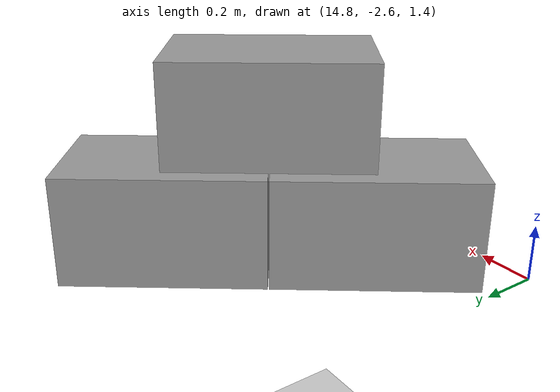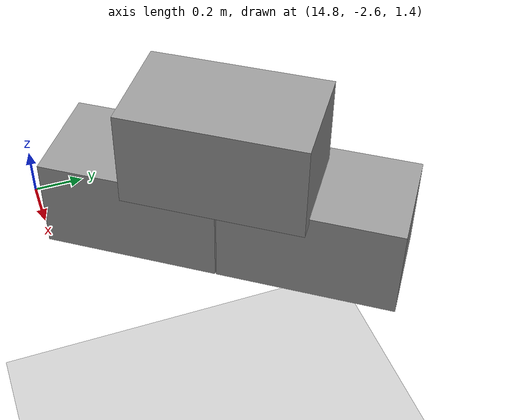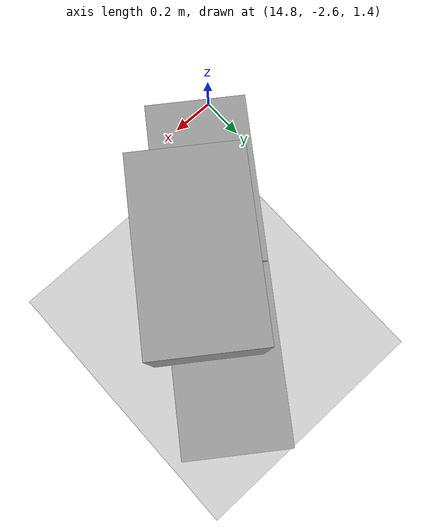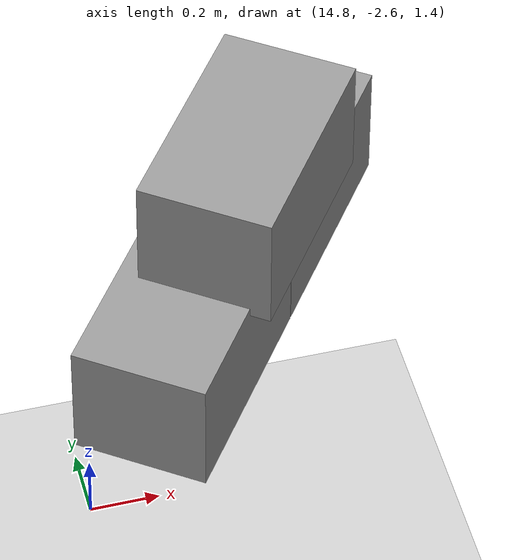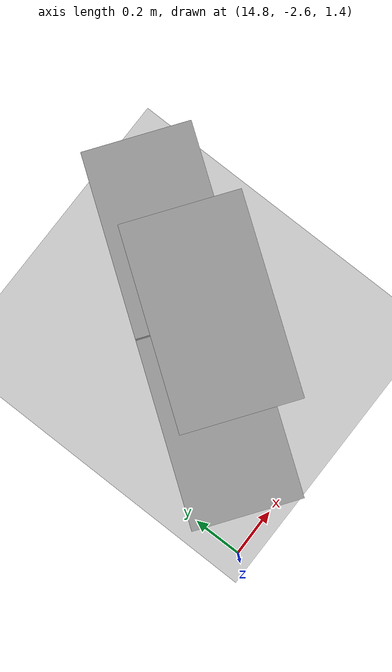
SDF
<sdf version="1.7">
 <world name="default">
  <model name="ground_plane">
   <static>1</static>
   <link name="link">
    <collision name="collision">
     <geometry><plane><normal>0 0 1</normal><size>100 100</size></plane></geometry>
     <surface>
      <contact><collide_bitmask>65535</collide_bitmask></contact>
      <friction><ode><mu>100</mu><mu2>50</mu2></ode></friction>
     </surface>
    </collision>
    <visual name="visual">
     <cast_shadows>0</cast_shadows>
     <geometry><plane><normal>0 0 1</normal><size>100 100</size></plane></geometry>
     <material>
      <script><uri>file://media/materials/scripts/gazebo.material</uri><name>Gazebo/Grey</name></script>
     </material>
    </visual>
   </link>
  </model>
  <model name="Add_Box_clone_clone_3_clone_5">
   <link name="link">
    <inertial>
     <mass>1</mass>
     <inertia>
      <ixx>0.166667</ixx>
      <ixy>0</ixy>
      <ixz>0</ixz>
      <iyy>0.166667</iyy>
      <iyz>0</iyz>
      <izz>0.166667</izz>
     </inertia>
    </inertial>
    <kinematic>1</kinematic>
    <gravity>0</gravity>
    <visual name="visual">
     <geometry><box><size>0.686 0.406 0.381</size></box></geometry>
     <material>
      <script><name>Gazebo/Grey</name><uri>file://media/materials/scripts/gazebo.material</uri></script>
      <shader type="pixel"><normal_map>__default__</normal_map></shader>
      <ambient>0.3 0.3 0.3 1</ambient>
      <diffuse>0.7 0.7 0.7 1</diffuse>
      <specular>0.01 0.01 0.01 1</specular>
      <emissive>0 0 0 1</emissive>
     </material>
    </visual>
    <collision name="collision">
     <geometry><box><size>1 1 1</size></box></geometry>
     <surface>
      <friction>
       <ode><mu>1</mu><mu2>1</mu2><fdir1>0 0 0</fdir1><slip1>0</slip1><slip2>0</slip2></ode>
       <torsional>
        <coefficient>1</coefficient>
        <patch_radius>0</patch_radius>
        <surface_radius>0</surface_radius>
        <use_patch_radius>1</use_patch_radius>
        <ode><slip>0</slip></ode>
       </torsional>
      </friction>
      <bounce><restitution_coefficient>0</restitution_coefficient><threshold>1e+06</threshold></bounce>
      <contact>
       <collide_without_contact>0</collide_without_contact>
       <collide_without_contact_bitmask>1</collide_without_contact_bitmask>
       <collide_bitmask>1</collide_bitmask>
       <ode>
        <soft_cfm>0</soft_cfm>
        <soft_erp>0.2</soft_erp>
        <kp>1e+13</kp>
        <kd>1</kd>
        <max_vel>0.01</max_vel>
        <min_depth>0</min_depth>
       </ode>
       <bullet>
        <split_impulse>1</split_impulse>
        <split_impulse_penetration_threshold>-0.01</split_impulse_penetration_threshold>
        <soft_cfm>0</soft_cfm>
        <soft_erp>0.2</soft_erp>
        <kp>1e+13</kp>
        <kd>1</kd>
       </bullet>
      </contact>
     </surface>
    </collision>
   </link>
   <link name="link_clone">
    <inertial>
     <mass>1</mass>
     <inertia>
      <ixx>0.166667</ixx>
      <ixy>0</ixy>
      <ixz>0</ixz>
      <iyy>0.166667</iyy>
      <iyz>0</iyz>
      <izz>0.166667</izz>
     </inertia>
    </inertial>
    <pose>-0.343354 -0.063316 0.354303 1e-05 -0 0</pose>
    <gravity>0</gravity>
    <visual name="visual">
     <geometry><box><size>0.686 0.406 0.381</size></box></geometry>
     <material>
      <script><name>Gazebo/Grey</name><uri>file://media/materials/scripts/gazebo.material</uri></script>
      <shader type="pixel"><normal_map>__default__</normal_map></shader>
      <ambient>0.3 0.3 0.3 1</ambient>
      <diffuse>0.7 0.7 0.7 1</diffuse>
      <specular>0.01 0.01 0.01 1</specular>
      <emissive>0 0 0 1</emissive>
     </material>
    </visual>
    <collision name="collision">
     <geometry><box><size>1 1 1</size></box></geometry>
     <surface>
      <friction>
       <ode><mu>1</mu><mu2>1</mu2><fdir1>0 0 0</fdir1><slip1>0</slip1><slip2>0</slip2></ode>
       <torsional>
        <coefficient>1</coefficient>
        <patch_radius>0</patch_radius>
        <surface_radius>0</surface_radius>
        <use_patch_radius>1</use_patch_radius>
        <ode><slip>0</slip></ode>
       </torsional>
      </friction>
      <bounce><restitution_coefficient>0</restitution_coefficient><threshold>1e+06</threshold></bounce>
      <contact>
       <collide_without_contact>0</collide_without_contact>
       <collide_without_contact_bitmask>1</collide_without_contact_bitmask>
       <collide_bitmask>1</collide_bitmask>
       <ode>
        <soft_cfm>0</soft_cfm>
        <soft_erp>0.2</soft_erp>
        <kp>1e+13</kp>
        <kd>1</kd>
        <max_vel>0.01</max_vel>
        <min_depth>0</min_depth>
       </ode>
       <bullet>
        <split_impulse>1</split_impulse>
        <split_impulse_penetration_threshold>-0.01</split_impulse_penetration_threshold>
        <soft_cfm>0</soft_cfm>
        <soft_erp>0.2</soft_erp>
        <kp>1e+13</kp>
        <kd>1</kd>
       </bullet>
      </contact>
     </surface>
    </collision>
   </link>
   <link name="link_clone_clone">
    <inertial>
     <mass>1</mass>
     <inertia>
      <ixx>0.166667</ixx>
      <ixy>0</ixy>
      <ixz>0</ixz>
      <iyy>0.166667</iyy>
      <iyz>0</iyz>
      <izz>0.166667</izz>
     </inertia>
    </inertial>
    <pose>-0.690786 -0.000183 -1e-05 2e-05 -0 0</pose>
    <gravity>0</gravity>
    <visual name="visual">
     <geometry><box><size>0.686 0.406 0.381</size></box></geometry>
     <material>
      <script><name>Gazebo/Grey</name><uri>file://media/materials/scripts/gazebo.material</uri></script>
      <shader type="pixel"><normal_map>__default__</normal_map></shader>
      <ambient>0.3 0.3 0.3 1</ambient>
      <diffuse>0.7 0.7 0.7 1</diffuse>
      <specular>0.01 0.01 0.01 1</specular>
      <emissive>0 0 0 1</emissive>
     </material>
    </visual>
    <collision name="collision">
     <geometry><box><size>1 1 1</size></box></geometry>
     <surface>
      <friction>
       <ode><mu>1</mu><mu2>1</mu2><fdir1>0 0 0</fdir1><slip1>0</slip1><slip2>0</slip2></ode>
       <torsional>
        <coefficient>1</coefficient>
        <patch_radius>0</patch_radius>
        <surface_radius>0</surface_radius>
        <use_patch_radius>1</use_patch_radius>
        <ode><slip>0</slip></ode>
       </torsional>
      </friction>
      <bounce><restitution_coefficient>0</restitution_coefficient><threshold>1e+06</threshold></bounce>
      <contact>
       <collide_without_contact>0</collide_without_contact>
       <collide_without_contact_bitmask>1</collide_without_contact_bitmask>
       <collide_bitmask>1</collide_bitmask>
       <ode>
        <soft_cfm>0</soft_cfm>
        <soft_erp>0.2</soft_erp>
        <kp>1e+13</kp>
        <kd>1</kd>
        <max_vel>0.01</max_vel>
        <min_depth>0</min_depth>
       </ode>
       <bullet>
        <split_impulse>1</split_impulse>
        <split_impulse_penetration_threshold>-0.01</split_impulse_penetration_threshold>
        <soft_cfm>0</soft_cfm>
        <soft_erp>0.2</soft_erp>
        <kp>1e+13</kp>
        <kd>1</kd>
       </bullet>
      </contact>
     </surface>
    </collision>
   </link>
   <static>0</static>
   <pose>15.5707 -1.64808 1.61518 0 -0 0.950497</pose>
  </model>
 </world>
</sdf>
